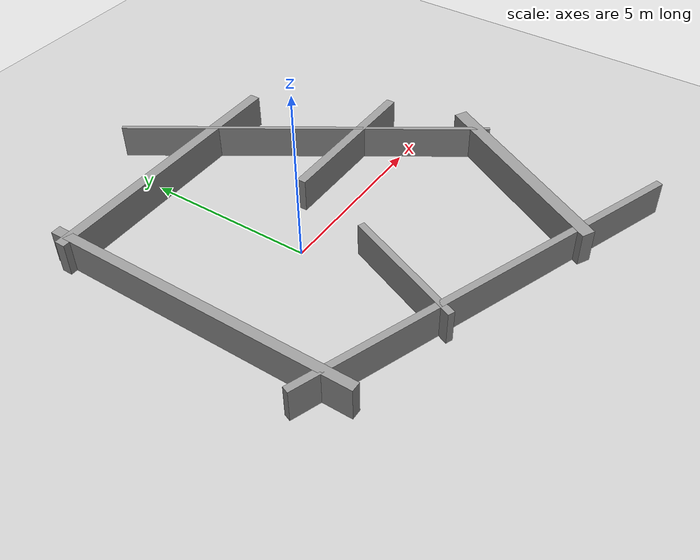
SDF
<sdf version="1.7">
 <world name="default">
  <model name="ground_plane">
   <static>1</static>
   <link name="link">
    <collision name="collision">
     <geometry><plane><normal>0 0 1</normal><size>100 100</size></plane></geometry>
     <surface><friction><ode><mu>100</mu><mu2>50</mu2></ode></friction></surface>
    </collision>
    <visual name="visual">
     <cast_shadows>0</cast_shadows>
     <geometry><plane><normal>0 0 1</normal><size>100 100</size></plane></geometry>
     <material>
      <script><uri>file://media/materials/scripts/gazebo.material</uri><name>Gazebo/Grey</name></script>
     </material>
    </visual>
   </link>
  </model>
  <light name="sun" type="directional">
   <pose>0 0 10 0 -0 0</pose>
   <diffuse>0.8 0.8 0.8 1</diffuse>
   <specular>0.2 0.2 0.2 1</specular>
   <attenuation>
    <range>1000</range>
    <constant>0.9</constant>
    <linear>0.01</linear>
    <quadratic>0.001</quadratic>
   </attenuation>
   <direction>-0.5 0.1 -0.9</direction>
   <spot><inner_angle>0</inner_angle><outer_angle>0</outer_angle><falloff>0</falloff></spot>
  </light>
  <scene><shadows>0</shadows><ambient>0.4 0.4 0.4 1</ambient><background>0.7 0.7 0.7 1</background></scene>
  <physics type="ode">
   <real_time_update_rate>1000</real_time_update_rate>
   <max_step_size>0.001</max_step_size>
   <real_time_factor>1</real_time_factor>
   <ode>
    <solver>
     <type>quick</type>
     <iters>150</iters>
     <precon_iters>0</precon_iters>
     <sor>1.4</sor>
     <use_dynamic_moi_rescaling>1</use_dynamic_moi_rescaling>
    </solver>
    <constraints>
     <cfm>1e-05</cfm>
     <erp>0.2</erp>
     <contact_max_correcting_vel>2000</contact_max_correcting_vel>
     <contact_surface_layer>0.01</contact_surface_layer>
    </constraints>
   </ode>
  </physics>
  <gravity>0 0 -9.8</gravity>
  <magnetic_field>6e-06 2.3e-05 -4.2e-05</magnetic_field>
  <atmosphere type="adiabatic"/>
  <audio><device>default</device></audio>
  <spherical_coordinates>
   <surface_model>EARTH_WGS84</surface_model>
   <latitude_deg>0</latitude_deg>
   <longitude_deg>0</longitude_deg>
   <elevation>0</elevation>
   <heading_deg>0</heading_deg>
  </spherical_coordinates>
  <model name="weird_house">
   <link name="link">
    <inertial>
     <mass>2.47565</mass>
     <inertia><ixx>0.226156</ixx><ixy>0</ixy><ixz>0</ixz><iyy>13.3457</iyy><iyz>0</iyz><izz>13.1593</izz></inertia>
    </inertial>
    <visual name="visual">
     <geometry><box><size>7.98059 0.310205 1</size></box></geometry>
     <material>
      <script><name>Gazebo/Grey</name><uri>file://media/materials/scripts/gazebo.material</uri></script>
      <shader type="pixel"/>
     </material>
    </visual>
    <collision name="collision">
     <geometry><box><size>7.98059 0.310205 1</size></box></geometry>
     <surface>
      <friction>
       <ode><mu>1</mu><mu2>1</mu2><fdir1>0 0 0</fdir1><slip1>0</slip1><slip2>0</slip2></ode>
       <torsional>
        <coefficient>1</coefficient>
        <patch_radius>0</patch_radius>
        <surface_radius>0</surface_radius>
        <use_patch_radius>1</use_patch_radius>
        <ode><slip>0</slip></ode>
       </torsional>
      </friction>
      <bounce><restitution_coefficient>0</restitution_coefficient><threshold>1e+06</threshold></bounce>
      <contact>
       <collide_without_contact>0</collide_without_contact>
       <collide_without_contact_bitmask>1</collide_without_contact_bitmask>
       <collide_bitmask>1</collide_bitmask>
       <ode>
        <soft_cfm>0</soft_cfm>
        <soft_erp>0.2</soft_erp>
        <kp>1e+13</kp>
        <kd>1</kd>
        <max_vel>0.01</max_vel>
        <min_depth>0</min_depth>
       </ode>
       <bullet>
        <split_impulse>1</split_impulse>
        <split_impulse_penetration_threshold>-0.01</split_impulse_penetration_threshold>
        <soft_cfm>0</soft_cfm>
        <soft_erp>0.2</soft_erp>
        <kp>1e+13</kp>
        <kd>1</kd>
       </bullet>
      </contact>
     </surface>
    </collision>
   </link>
   <link name="link_0">
    <inertial>
     <mass>1.28314</mass>
     <inertia><ixx>12.6829</ixx><ixy>0</ixy><ixz>0</ixz><iyy>0.108425</iyy><iyz>0</iyz><izz>12.5774</izz></inertia>
    </inertial>
    <pose>3.51451 -2.28059 0 0 -0 0.571896</pose>
    <visual name="visual">
     <geometry><box><size>0.118315 10.8449 1</size></box></geometry>
     <material>
      <lighting>1</lighting>
      <script><uri>file://media/materials/scripts/gazebo.material</uri><name>Gazebo/Grey</name></script>
      <shader type="pixel"/>
     </material>
    </visual>
    <collision name="collision">
     <geometry><box><size>0.118315 10.8449 1</size></box></geometry>
     <surface>
      <friction>
       <ode><mu>1</mu><mu2>1</mu2><fdir1>0 0 0</fdir1><slip1>0</slip1><slip2>0</slip2></ode>
       <torsional>
        <coefficient>1</coefficient>
        <patch_radius>0</patch_radius>
        <surface_radius>0</surface_radius>
        <use_patch_radius>1</use_patch_radius>
        <ode><slip>0</slip></ode>
       </torsional>
      </friction>
      <bounce><restitution_coefficient>0</restitution_coefficient><threshold>1e+06</threshold></bounce>
      <contact>
       <collide_without_contact>0</collide_without_contact>
       <collide_without_contact_bitmask>1</collide_without_contact_bitmask>
       <collide_bitmask>1</collide_bitmask>
       <ode>
        <soft_cfm>0</soft_cfm>
        <soft_erp>0.2</soft_erp>
        <kp>1e+13</kp>
        <kd>1</kd>
        <max_vel>0.01</max_vel>
        <min_depth>0</min_depth>
       </ode>
       <bullet>
        <split_impulse>1</split_impulse>
        <split_impulse_penetration_threshold>-0.01</split_impulse_penetration_threshold>
        <soft_cfm>0</soft_cfm>
        <soft_erp>0.2</soft_erp>
        <kp>1e+13</kp>
        <kd>1</kd>
       </bullet>
      </contact>
     </surface>
    </collision>
   </link>
   <link name="link_1">
    <inertial>
     <mass>1.2402</mass>
     <inertia><ixx>0.11072</ixx><ixy>0</ixy><ixz>0</ixz><iyy>2.33411</iyy><iyz>0</iyz><izz>2.23813</izz></inertia>
    </inertial>
    <pose>3.74976 -3.6311 0 -0 -0 -0</pose>
    <visual name="visual">
     <geometry><box><size>4.64591 0.26704 1</size></box></geometry>
     <material>
      <lighting>1</lighting>
      <script><uri>file://media/materials/scripts/gazebo.material</uri><name>Gazebo/Grey</name></script>
      <shader type="pixel"/>
     </material>
    </visual>
    <collision name="collision">
     <geometry><box><size>4.64591 0.26704 1</size></box></geometry>
     <surface>
      <friction>
       <ode><mu>1</mu><mu2>1</mu2><fdir1>0 0 0</fdir1><slip1>0</slip1><slip2>0</slip2></ode>
       <torsional>
        <coefficient>1</coefficient>
        <patch_radius>0</patch_radius>
        <surface_radius>0</surface_radius>
        <use_patch_radius>1</use_patch_radius>
        <ode><slip>0</slip></ode>
       </torsional>
      </friction>
      <bounce><restitution_coefficient>0</restitution_coefficient><threshold>1e+06</threshold></bounce>
      <contact>
       <collide_without_contact>0</collide_without_contact>
       <collide_without_contact_bitmask>1</collide_without_contact_bitmask>
       <collide_bitmask>1</collide_bitmask>
       <ode>
        <soft_cfm>0</soft_cfm>
        <soft_erp>0.2</soft_erp>
        <kp>1e+13</kp>
        <kd>1</kd>
        <max_vel>0.01</max_vel>
        <min_depth>0</min_depth>
       </ode>
       <bullet>
        <split_impulse>1</split_impulse>
        <split_impulse_penetration_threshold>-0.01</split_impulse_penetration_threshold>
        <soft_cfm>0</soft_cfm>
        <soft_erp>0.2</soft_erp>
        <kp>1e+13</kp>
        <kd>1</kd>
       </bullet>
      </contact>
     </surface>
    </collision>
   </link>
   <link name="link_2">
    <inertial>
     <mass>2.67557</mass>
     <inertia><ixx>19.6424</ixx><ixy>0</ixy><ixz>0</ixz><iyy>0.24129</iyy><iyz>0</iyz><izz>19.4378</izz></inertia>
    </inertial>
    <pose>-3.64634 -4.15985 -0 -0 -0 -0</pose>
    <visual name="visual">
     <geometry><box><size>0.286691 9.33256 1</size></box></geometry>
     <material>
      <lighting>1</lighting>
      <script><uri>file://media/materials/scripts/gazebo.material</uri><name>Gazebo/Grey</name></script>
      <shader type="pixel"/>
     </material>
    </visual>
    <collision name="collision">
     <geometry><box><size>0.286691 9.33256 1</size></box></geometry>
     <surface>
      <friction>
       <ode><mu>1</mu><mu2>1</mu2><fdir1>0 0 0</fdir1><slip1>0</slip1><slip2>0</slip2></ode>
       <torsional>
        <coefficient>1</coefficient>
        <patch_radius>0</patch_radius>
        <surface_radius>0</surface_radius>
        <use_patch_radius>1</use_patch_radius>
        <ode><slip>0</slip></ode>
       </torsional>
      </friction>
      <bounce><restitution_coefficient>0</restitution_coefficient><threshold>1e+06</threshold></bounce>
      <contact>
       <collide_without_contact>0</collide_without_contact>
       <collide_without_contact_bitmask>1</collide_without_contact_bitmask>
       <collide_bitmask>1</collide_bitmask>
       <ode>
        <soft_cfm>0</soft_cfm>
        <soft_erp>0.2</soft_erp>
        <kp>1e+13</kp>
        <kd>1</kd>
        <max_vel>0.01</max_vel>
        <min_depth>0</min_depth>
       </ode>
       <bullet>
        <split_impulse>1</split_impulse>
        <split_impulse_penetration_threshold>-0.01</split_impulse_penetration_threshold>
        <soft_cfm>0</soft_cfm>
        <soft_erp>0.2</soft_erp>
        <kp>1e+13</kp>
        <kd>1</kd>
       </bullet>
      </contact>
     </surface>
    </collision>
   </link>
   <link name="link_3">
    <inertial>
     <mass>2.50569</mass>
     <inertia><ixx>0.217758</ixx><ixy>0</ixy><ixz>0</ixz><iyy>30.794</iyy><iyz>0</iyz><izz>30.5942</izz></inertia>
    </inertial>
    <pose>1.09388 -9.73862 0 0 -0 -0.365732</pose>
    <visual name="visual">
     <geometry><box><size>12.1027 0.20704 1</size></box></geometry>
     <material>
      <lighting>1</lighting>
      <script><uri>file://media/materials/scripts/gazebo.material</uri><name>Gazebo/Grey</name></script>
      <shader type="pixel"/>
     </material>
    </visual>
    <collision name="collision">
     <geometry><box><size>12.1027 0.20704 1</size></box></geometry>
     <surface>
      <friction>
       <ode><mu>1</mu><mu2>1</mu2><fdir1>0 0 0</fdir1><slip1>0</slip1><slip2>0</slip2></ode>
       <torsional>
        <coefficient>1</coefficient>
        <patch_radius>0</patch_radius>
        <surface_radius>0</surface_radius>
        <use_patch_radius>1</use_patch_radius>
        <ode><slip>0</slip></ode>
       </torsional>
      </friction>
      <bounce><restitution_coefficient>0</restitution_coefficient><threshold>1e+06</threshold></bounce>
      <contact>
       <collide_without_contact>0</collide_without_contact>
       <collide_without_contact_bitmask>1</collide_without_contact_bitmask>
       <collide_bitmask>1</collide_bitmask>
       <ode>
        <soft_cfm>0</soft_cfm>
        <soft_erp>0.2</soft_erp>
        <kp>1e+13</kp>
        <kd>1</kd>
        <max_vel>0.01</max_vel>
        <min_depth>0</min_depth>
       </ode>
       <bullet>
        <split_impulse>1</split_impulse>
        <split_impulse_penetration_threshold>-0.01</split_impulse_penetration_threshold>
        <soft_cfm>0</soft_cfm>
        <soft_erp>0.2</soft_erp>
        <kp>1e+13</kp>
        <kd>1</kd>
       </bullet>
      </contact>
     </surface>
    </collision>
   </link>
   <link name="link_4">
    <inertial>
     <mass>2.41311</mass>
     <inertia><ixx>7.72915</ixx><ixy>0</ixy><ixz>0</ixz><iyy>0.232372</iyy><iyz>0</iyz><izz>7.55934</izz></inertia>
    </inertial>
    <pose>5.18861 -8.42444 0 0 -0 -0.500864</pose>
    <visual name="visual">
     <geometry><box><size>0.394394 6.11848 1</size></box></geometry>
     <material>
      <lighting>1</lighting>
      <script><uri>file://media/materials/scripts/gazebo.material</uri><name>Gazebo/Grey</name></script>
      <shader type="pixel"/>
     </material>
    </visual>
    <collision name="collision">
     <geometry><box><size>0.394394 6.11848 1</size></box></geometry>
     <surface>
      <friction>
       <ode><mu>1</mu><mu2>1</mu2><fdir1>0 0 0</fdir1><slip1>0</slip1><slip2>0</slip2></ode>
       <torsional>
        <coefficient>1</coefficient>
        <patch_radius>0</patch_radius>
        <surface_radius>0</surface_radius>
        <use_patch_radius>1</use_patch_radius>
        <ode><slip>0</slip></ode>
       </torsional>
      </friction>
      <bounce><restitution_coefficient>0</restitution_coefficient><threshold>1e+06</threshold></bounce>
      <contact>
       <collide_without_contact>0</collide_without_contact>
       <collide_without_contact_bitmask>1</collide_without_contact_bitmask>
       <collide_bitmask>1</collide_bitmask>
       <ode>
        <soft_cfm>0</soft_cfm>
        <soft_erp>0.2</soft_erp>
        <kp>1e+13</kp>
        <kd>1</kd>
        <max_vel>0.01</max_vel>
        <min_depth>0</min_depth>
       </ode>
       <bullet>
        <split_impulse>1</split_impulse>
        <split_impulse_penetration_threshold>-0.01</split_impulse_penetration_threshold>
        <soft_cfm>0</soft_cfm>
        <soft_erp>0.2</soft_erp>
        <kp>1e+13</kp>
        <kd>1</kd>
       </bullet>
      </contact>
     </surface>
    </collision>
   </link>
   <link name="link_5">
    <inertial>
     <mass>0.766944</mass>
     <inertia>
      <ixx>0.993647</ixx>
      <ixy>0</ixy>
      <ixz>0</ixz>
      <iyy>0.0664962</iyy>
      <iyz>0</iyz>
      <izz>0.93232</izz>
     </inertia>
    </inertial>
    <pose>0.10731 -7.74709 0 0 -0 -0.397345</pose>
    <visual name="visual">
     <geometry><box><size>0.201082 3.81407 1</size></box></geometry>
     <material>
      <lighting>1</lighting>
      <script><uri>file://media/materials/scripts/gazebo.material</uri><name>Gazebo/Grey</name></script>
      <shader type="pixel"/>
     </material>
    </visual>
    <collision name="collision">
     <geometry><box><size>0.201082 3.81407 1</size></box></geometry>
     <surface>
      <friction>
       <ode><mu>1</mu><mu2>1</mu2><fdir1>0 0 0</fdir1><slip1>0</slip1><slip2>0</slip2></ode>
       <torsional>
        <coefficient>1</coefficient>
        <patch_radius>0</patch_radius>
        <surface_radius>0</surface_radius>
        <use_patch_radius>1</use_patch_radius>
        <ode><slip>0</slip></ode>
       </torsional>
      </friction>
      <bounce><restitution_coefficient>0</restitution_coefficient><threshold>1e+06</threshold></bounce>
      <contact>
       <collide_without_contact>0</collide_without_contact>
       <collide_without_contact_bitmask>1</collide_without_contact_bitmask>
       <collide_bitmask>1</collide_bitmask>
       <ode>
        <soft_cfm>0</soft_cfm>
        <soft_erp>0.2</soft_erp>
        <kp>1e+13</kp>
        <kd>1</kd>
        <max_vel>0.01</max_vel>
        <min_depth>0</min_depth>
       </ode>
       <bullet>
        <split_impulse>1</split_impulse>
        <split_impulse_penetration_threshold>-0.01</split_impulse_penetration_threshold>
        <soft_cfm>0</soft_cfm>
        <soft_erp>0.2</soft_erp>
        <kp>1e+13</kp>
        <kd>1</kd>
       </bullet>
      </contact>
     </surface>
    </collision>
   </link>
   <static>0</static>
   <pose>0.080523 4.69013 0.5 0 -0 0</pose>
  </model>
 </world>
</sdf>
